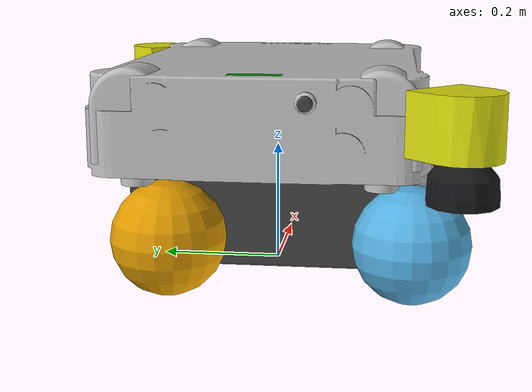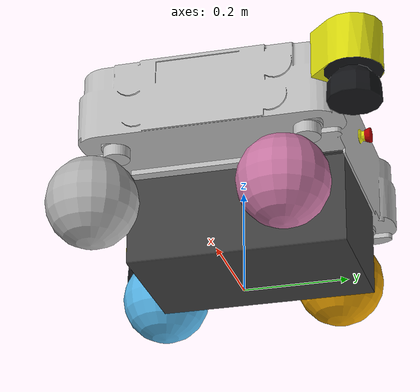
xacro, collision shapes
<?xml version="1.0" ?>
<robot name="mpo_700" xmlns:xacro="http://www.ros.org/wiki/xacro">

  <!-- BODY -->
  <xacro:include filename="$(find neo_simulation)/robots/mpo_700/xacros/mpo_700_body.xacro" />

  <!-- SENSORS -->
  <!-- Sick S300 - Comment/Uncomment if required -->

  <!-- Microscan - Comment/Uncomment if required -->
  <xacro:include filename="$(find neo_simulation)/robots/mpo_700/xacros/micro_scan.xacro" />
  <!--Ultrasonics, cameras and IMU's  -->

  <!--Gazebo  -->
  <xacro:include filename="$(find neo_simulation)/robots/mpo_700/xacros/mpo_700_gazebo.xacro" />

  <!--Caster  -->

  <xacro:include filename="$(find neo_simulation)/robots/mpo_700/xacros/mpo_700_caster_left.xacro" />

  <xacro:include filename="$(find neo_simulation)/robots/mpo_700/xacros/mpo_700_caster_right.xacro" />

  <!-- Wheels -->
  <xacro:include filename="$(find neo_simulation)/robots/mpo_700/xacros/mpo_700_wheel.xacro" />

  <!-- Depth camera -->

  <!-- Docking station -->

  <!-- Base Macro-->
<link name="base_link" />

  <!-- Base Macro-->
  <xacro:mpo_700_base name="base_footprint" parent="base_link">
    <origin xyz="0 0 0" rpy="0 0 0" />
  </xacro:mpo_700_base>

 <xacro:mpo_700_caster_left name="mpo_700_caster_front_left" parent="base_footprint">
    <origin xyz="0.24 0.18 0.22" rpy="0 0 3.14" />
  </xacro:mpo_700_caster_left>

  <xacro:mpo_700_caster_right name="mpo_700_caster_front_right" parent="base_footprint">
    <origin xyz="0.24 -0.18 0.22" rpy="0 0 0" />
  </xacro:mpo_700_caster_right>

  <xacro:mpo_700_caster_left name="mpo_700_caster_back_left" parent="base_footprint">
    <origin xyz="-0.24 0.18 0.22" rpy="0 0 3.14" />
  </xacro:mpo_700_caster_left>

  <xacro:mpo_700_caster_right name="mpo_700_caster_back_right" parent="base_footprint">
    <origin xyz="-0.24 -0.18 0.22" rpy="0 0 0" />
  </xacro:mpo_700_caster_right>

  <!--Wheel Macro  -->
  <xacro:mpo_700_wheel name="mpo_700_wheel_front_left" parent="mpo_700_caster_front_left_link">
    <origin xyz="0.0 0.045 -0.12" rpy="0 0 0" />
  </xacro:mpo_700_wheel>

  <xacro:mpo_700_wheel name="mpo_700_wheel_front_right" parent="mpo_700_caster_front_right_link">
    <origin xyz="0.0 -0.045 -0.12" rpy="0 0 3.14" />
  </xacro:mpo_700_wheel>

  <xacro:mpo_700_wheel name="mpo_700_wheel_back_left" parent="mpo_700_caster_back_left_link">
      <origin xyz="0.0 0.045 -0.12" rpy="0 0 0" />
  </xacro:mpo_700_wheel>

  <xacro:mpo_700_wheel name="mpo_700_wheel_back_right" parent="mpo_700_caster_back_right_link">
    <origin xyz="0.0 -0.045 -0.12" rpy="0 0 3.14" />
  </xacro:mpo_700_wheel>

<!-- Sensors -->

  <xacro:sick_laser_v0 name="lidar_1" parent="base_link" ros_topic="lidar_1/scan_filtered">
    <origin xyz="0.338 0.288 0.223" rpy="3.14 0 0.79" /> <!-- Scanners on the side -->
  </xacro:sick_laser_v0>

  <xacro:sick_laser_v0 name="lidar_2" parent="base_link" ros_topic="lidar_2/scan_filtered">
    <origin xyz="-0.338 -0.288 0.223" rpy="3.14 0 3.93" /> <!-- Scanners on the side -->
  </xacro:sick_laser_v0>

     <!--+++++++++++++++++++ IMU ++++++++++++++++++++++++-->
 <!-- Comment or uncomment based on your requirement -->

  <!--+++++++++++++++++++ Ultra Sonic ++++++++++++++++++++++++-->
  <!-- Comment or uncomment based on your requirement -->
  <!-- SENSOR 1 -->
  <!-- SENSOR 2 -->
  <!-- SENSOR 3 -->
  <!-- SENSOR 4 -->
  <!-- SENSOR 5 -->
  <!-- SENSOR 6 -->
  <!-- SENSOR 7 -->
  <!-- SENSOR 8 -->
  <!-- SENSOR 9 -->
  <!-- SENSOR 10 -->
  <!-- SENSOR 11 -->
  <!-- SENSOR 12 -->
  <!-- SENSOR 13 -->
  <!-- SENSOR 14 -->
  <!-- SENSOR 15 -->
  <!-- SENSOR 16 -->

  <!-- Depth Camera -->

  <!-- Docking station -->

   <transmission name="mpo_700_caster_front_left">
    <type>transmission_interface/SimpleTransmission</type>
    <joint name="mpo_700_caster_front_left_joint">
      <hardwareInterface>hardware_interface/PositionJointInterface</hardwareInterface>
    </joint>
    <actuator name="mpo_700_caster_front_left_motor">
      <mechanicalReduction>1</mechanicalReduction>
    </actuator>
  </transmission>
  <transmission name="mpo_700_wheel_front_left">
    <type>transmission_interface/SimpleTransmission</type>
    <joint name="mpo_700_wheel_front_left_joint">
      <hardwareInterface>hardware_interface/VelocityJointInterface</hardwareInterface>
    </joint>
    <actuator name="mpo_700_wheel_front_left_motor">
      <mechanicalReduction>1</mechanicalReduction>
    </actuator>
  </transmission>
  <transmission name="mpo_700_caster_back_left">
    <type>transmission_interface/SimpleTransmission</type>
    <joint name="mpo_700_caster_back_left_joint">
      <hardwareInterface>hardware_interface/PositionJointInterface</hardwareInterface>
    </joint>
    <actuator name="mpo_700_caster_back_left_motor">
      <mechanicalReduction>1</mechanicalReduction>
    </actuator>
  </transmission>
  <transmission name="mpo_700_wheel_back_right">
    <type>transmission_interface/SimpleTransmission</type>
    <joint name="mpo_700_wheel_back_right_joint">
      <hardwareInterface>hardware_interface/VelocityJointInterface</hardwareInterface>
    </joint>
    <actuator name="mpo_700_wheel_back_right_motor">
      <mechanicalReduction>1</mechanicalReduction>
    </actuator>
  </transmission>
  <transmission name="mpo_700_caster_back_right">
    <type>transmission_interface/SimpleTransmission</type>
    <joint name="mpo_700_caster_back_right_joint">
      <hardwareInterface>hardware_interface/PositionJointInterface</hardwareInterface>
    </joint>
    <actuator name="mpo_700_caster_back_right_motor">
      <mechanicalReduction>1</mechanicalReduction>
    </actuator>
  </transmission>
  <transmission name="mpo_700_wheel_front_right">
    <type>transmission_interface/SimpleTransmission</type>
    <joint name="mpo_700_wheel_front_right_joint">
      <hardwareInterface>hardware_interface/VelocityJointInterface</hardwareInterface>
    </joint>
    <actuator name="mpo_700_wheel_front_right_motor">
      <mechanicalReduction>1</mechanicalReduction>
    </actuator>
  </transmission>
  <transmission name="mpo_700_caster_front_right">
    <type>transmission_interface/SimpleTransmission</type>
    <joint name="mpo_700_caster_front_right_joint">
      <hardwareInterface>hardware_interface/PositionJointInterface</hardwareInterface>
    </joint>
    <actuator name="mpo_700_caster_front_right_motor">
      <mechanicalReduction>1</mechanicalReduction>
    </actuator>
  </transmission>
  <transmission name="mpo_700_wheel_back_left">
    <type>transmission_interface/SimpleTransmission</type>
    <joint name="mpo_700_wheel_back_left_joint">
      <hardwareInterface>hardware_interface/VelocityJointInterface</hardwareInterface>
    </joint>
    <actuator name="mpo_700_wheel_front_left_motor">
      <mechanicalReduction>1</mechanicalReduction>
    </actuator>
  </transmission>
</robot>

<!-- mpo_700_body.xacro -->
<robot xmlns:xacro="http://www.ros.org/wiki/xacro" name="mpo_700">

  <xacro:macro name="mpo_700_base" params="name parent *origin">
   <joint name="${name}_joint" type="fixed">
    <insert_block name="origin" />
    <axis xyz="0 0 -1" />
    <joint_properties damping="1" friction="1" />
    <parent link="${parent}" />
    <child link="${name}" />
   </joint>
    <link name="${name}">
    <inertial>
      <mass value="140"/>
      <origin xyz="0 0 0"/>
      <inertia ixx="7.8" ixy="0.0" ixz="0"
               iyy="7.8" iyz="0.0"
               izz="7.8"/>
    </inertial>
      <visual>
        <origin xyz="0.0 0.0 0.0" rpy="0 0 -1.571" />
        <geometry>
            <mesh filename="package://neo_simulation/robots/mpo_700/meshes/MPO-700-BODY.dae" scale="0.001 0.001 0.001"/>
        </geometry>
      </visual>
      <collision>
        <origin xyz="0. 0. 0." rpy="0 0 -1.571" />
        <geometry>
            <mesh filename="package://neo_simulation/robots/mpo_700/meshes/MPO-700-BODY.dae" scale="0.001 0.001 0.001"/>
        </geometry>
      </collision>
    </link>

  </xacro:macro>

</robot>

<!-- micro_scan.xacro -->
<robot xmlns:xacro="http://www.ros.org/wiki/xacro" name="mpo_700">
  <xacro:macro name="sick_laser_v0" params="name parent *origin ros_topic">
    <joint name="${name}_joint" type="fixed">
      <axis xyz="0 1 0" />
      <insert_block name="origin" />
      <parent link="${parent}"/>
      <child link="${name}_link"/>
    </joint>
    <link name="${name}_link" type="laser">
      <inertial>
        <mass value="0.0001" />
        <origin xyz="0 0 0" rpy="0 0 0" />
        <inertia ixx="0.0001" ixy="0" ixz="0" iyy="0.000001" iyz="0" izz="0.0001" />
      </inertial>
      <visual>
        <origin xyz="0 0 -0.06" rpy="1.57 0 0" />
      <geometry>
        <mesh filename="package://neo_simulation/robots/mpo_700/meshes/SICK-MICROSCAN3.dae" scale="0.001 0.001 0.001" />
        </geometry>
      </visual>
      <collision>
        <origin xyz="0 0 -0.06" rpy="1.57 0 0" />
        <geometry>
          <mesh filename="package://neo_simulation/robots/mpo_700/meshes/SICK-MICROSCAN3.dae" scale="0.001 0.001 0.001" />
        </geometry>
      </collision>
    </link>
  </xacro:macro>

</robot>

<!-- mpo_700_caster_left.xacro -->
<robot xmlns:xacro="http://www.ros.org/wiki/xacro" name="mpo_700">

  <xacro:macro name="mpo_700_caster_left" params="name parent *origin">
   <joint name="${name}_joint" type="revolute">
    <insert_block name="origin" />
    <axis xyz="0 0 1" />
    <limit effort="1000.0" lower="-1e+16" upper="1e+16" velocity="6.5"/>
    <joint_properties damping="30" friction="110"/>
    <parent link="${parent}" />
    <child link="${name}_link" />
   </joint>

   <link name="${name}_link">
    <inertial>
      <mass value="12.7"/>
      <origin rpy="0 0 0" xyz="0 0 0"/>
      <inertia ixx="0.27258101" ixy="0" ixz="0"
               iyy="0.27258101" iyz="0"
               izz="0.27258101"/>
    </inertial>

    <visual>
     <origin xyz="0 0 0.0" rpy="0 0 0"/>
     <geometry>
        <mesh filename="package://neo_simulation/robots/mpo_700/meshes/MPO-700-HEAD.dae" scale="0.001 0.001 0.001"/>
     </geometry>
    </visual>

    <collision>
     <origin xyz="0 0 0.0" rpy="0 0 0" />
     <geometry>
        <mesh filename="package://neo_simulation/robots/mpo_700/meshes/MPO-700-HEAD.dae" scale="0.001 0.001 0.001"/>
     </geometry>
    </collision>
   </link>

  </xacro:macro>
</robot>

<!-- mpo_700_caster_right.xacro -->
<robot xmlns:xacro="http://www.ros.org/wiki/xacro" name="mpo_700">

  <xacro:macro name="mpo_700_caster_right" params="name parent *origin">
   <joint name="${name}_joint" type="revolute">
    <insert_block name="origin" />
    <axis xyz="0 0 1" />
    <limit effort="1000.0" lower="-1e+16" upper="1e+16" velocity="6.5"/>
    <joint_properties damping="30" friction="110"/>
    <parent link="${parent}" />
    <child link="${name}_link" />
   </joint>

   <link name="${name}_link">
    <inertial>
      <mass value="12.7"/>
      <origin rpy="0 0 0" xyz="0 0 0"/>
      <inertia ixx="0.27258101" ixy="0" ixz="0"
               iyy="0.27258101" iyz="0"
               izz="0.27258101"/>
    </inertial>

    <visual>
     <origin xyz="0 0 0.0" rpy="0 0 3.14"/>
     <geometry>
        <mesh filename="package://neo_simulation/robots/mpo_700/meshes/MPO-700-HEAD.dae" scale="0.001 0.001 0.001"/>
     </geometry>
    </visual>

    <collision>
     <origin xyz="0 0 0.0" rpy="0 0 3.14" />
     <geometry>
        <mesh filename="package://neo_simulation/robots/mpo_700/meshes/MPO-700-HEAD.dae" scale="0.001 0.001 0.001"/>
     </geometry>
    </collision>
   </link>

  </xacro:macro>
</robot>

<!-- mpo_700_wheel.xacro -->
<robot xmlns:xacro="http://www.ros.org/wiki/xacro" name="mpo_700">

  <xacro:macro name="mpo_700_wheel" params="name parent *origin">
   <joint name="${name}_joint" type="revolute">
    <insert_block name="origin" />
    <limit effort="1000.0" lower="-1e+16" upper="1e+16" velocity="20.5"/>
    <axis xyz="0 -1 0" />
    <joint_properties damping="30" friction="110"/>
    <parent link="${parent}" />
    <child link="${name}_link" />
   </joint>

   <link name="${name}_link" type="wheel">
    <inertial>
      <mass value="3"/>
      <origin rpy="0 0 0" xyz="0 0 0"/>
      <inertia ixx="0.11042056" ixy="0.0" ixz="0.0"
               iyy="0.11042056" iyz="0.0"
               izz="0.11042056"/>
    </inertial>

    <visual>
     <origin xyz="0 0 0" rpy="0 0 3.14"/>
     <geometry>
        <mesh filename="package://neo_simulation/robots/mpo_700/meshes/MPO-700-WHEEL.dae" scale="0.001 0.001 0.001"/>
     </geometry>
    </visual>

    <collision>
     <origin xyz="0 0 0" rpy="0 0 0" />
     <geometry>
      <sphere radius="0.087"/>
     </geometry>
    </collision>
   </link>
     <gazebo reference="${name}_link">
      <mu1>0.0001</mu1>
      <mu2>0.0001</mu2>
</gazebo>
  </xacro:macro>

</robot>
